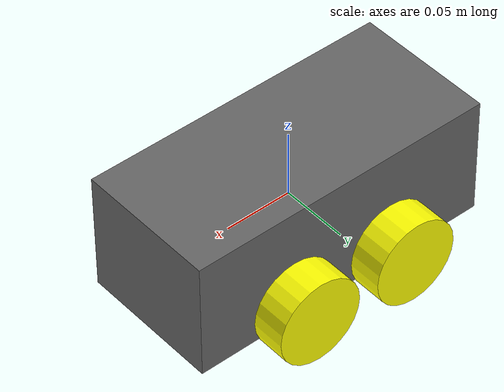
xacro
<?xml version="1.0"?>
<robot xmlns:xacro="http://www.ros.org/wiki/xacro" >

    <xacro:include filename="inertial_macros.xacro"/>

    <xacro:property name="chassis_length" value="0.230"/>
    <xacro:property name="chassis_width" value="0.105"/>
    <xacro:property name="chassis_height" value="0.090"/>
    <xacro:property name="chassis_mass" value="0.825"/>
    <xacro:property name="wheel_radius" value="0.0325"/>
    <xacro:property name="wheel_thickness" value="0.025"/>
    <xacro:property name="wheel_mass" value="0.050"/>
    <xacro:property name="wheel_offset_x" value="0.040"/>
    <xacro:property name="wheel_offset_y" value="0.065"/>

    <material name="white">
        <color rgba="1 1 1 1" />
    </material>

    <material name="grey">
        <color rgba="0.4 0.4 0.4 1"/>
    </material>

    <material name="black">
        <color rgba="0 0 0 1"/>
    </material>

    <material name="blue">
        <color rgba="0.2 0.2 1 1"/>
    </material>

    <material name="red">
        <color rgba="1 0 0 1"/>
    </material>

    <material name="yellow">
        <color rgba="1 1 0 1"/>
    </material>

    <!-- BASE LINK -->

    <link name="base_link">

    </link>

    <!-- BASE_FOOTPRINT LINK -->

    <joint name="base_footprint_joint" type="fixed">
        <parent link="base_link"/>
        <child link="base_footprint"/>
        <origin xyz="0 0 0" rpy="0 0 0"/>
    </joint>

    <link name="base_footprint">

    </link>

    <!-- CHASSIS -->

    <joint name="chassis_joint" type="fixed">
        <parent link="base_link"/>
        <child link="chassis"/>
        <origin xyz="0 0 0"/>
    </joint>

    <link name="chassis">
        <visual>
            <origin xyz="0 0 0"/>
            <geometry>
                <box size="${chassis_length} ${chassis_width} ${chassis_height}"/>
            </geometry>
            <material name="grey"/>
        </visual>
        <collision>
            <origin xyz="0 0 0"/>
            <geometry>
                <box size="${chassis_length} ${chassis_width} ${chassis_height}"/>
            </geometry>
        </collision>
        <xacro:inertial_box mass="${chassis_mass}" x="${chassis_length}" y="${chassis_width}" z="${chassis_height}">
            <origin xyz="0 0 0" rpy="0 0 0"/>
        </xacro:inertial_box>
    </link>

    <gazebo reference="chassis">
        <material>Gazebo/Grey</material>
    </gazebo>

    <!-- WHEELS -->
    <xacro:macro name="wheel" params="name x y axis rpy_axis">
        <joint name="${name}_joint" type="continuous">
            <parent link="base_link"/>
            <child link="${name}"/>
            <origin xyz="${x} ${y} ${-chassis_height/2 + 0.015}" rpy="${rpy_axis}" />
            <axis xyz="${axis}"/>
        </joint>
        <link name="${name}">
            <visual>
                <geometry>
                    <cylinder radius="${wheel_radius}" length="${wheel_thickness}"/>
                </geometry>
                <material name="yellow"/>
            </visual>
            <collision>
                <geometry>
                    <sphere radius="${wheel_radius}"/>
                </geometry>
            </collision>
            <xacro:inertial_cylinder mass="${wheel_mass}" length="${wheel_thickness}" radius="${wheel_radius}">
                <origin xyz="0 0 0" rpy="0 0 0"/>
            </xacro:inertial_cylinder>
        </link>
        <gazebo reference="${name}">
            <material>Gazebo/Yellow</material>
        </gazebo>
    </xacro:macro>

    <!-- Front Left Wheel -->
    <xacro:wheel name="front_left_wheel" x="${wheel_offset_x}" y="${wheel_offset_y}" axis="0 0 1" rpy_axis="-${pi/2} 0 0"/>

    <!-- Front Right Wheel -->
    <xacro:wheel name="front_right_wheel" x="${wheel_offset_x}" y="-${wheel_offset_y}" axis="0 0 -1" rpy_axis="${pi/2} 0 0"/>

    <!-- Rear Left Wheel -->
    <xacro:wheel name="rear_left_wheel" x="-${wheel_offset_x}" y="${wheel_offset_y}" axis="0 0 1" rpy_axis="-${pi/2} 0 0"/>

    <!-- Rear Right Wheel -->
    <xacro:wheel name="rear_right_wheel" x="-${wheel_offset_x}" y="-${wheel_offset_y}" axis="0 0 -1" rpy_axis="${pi/2} 0 0"/>

</robot>
